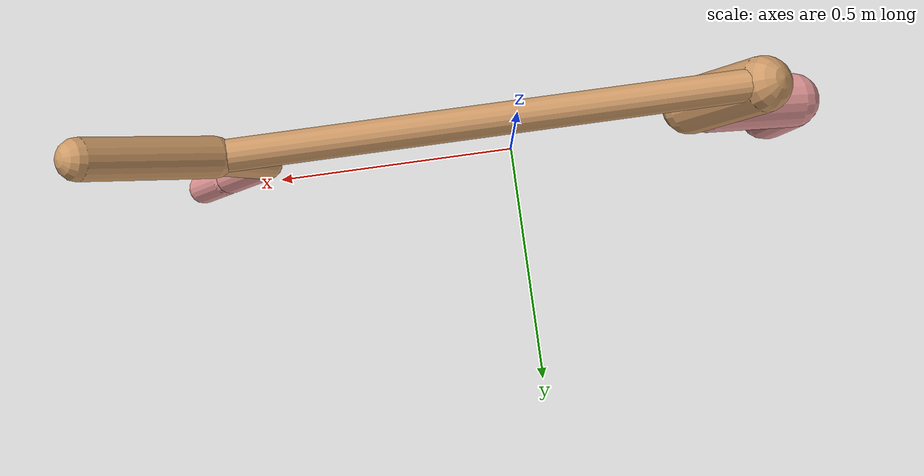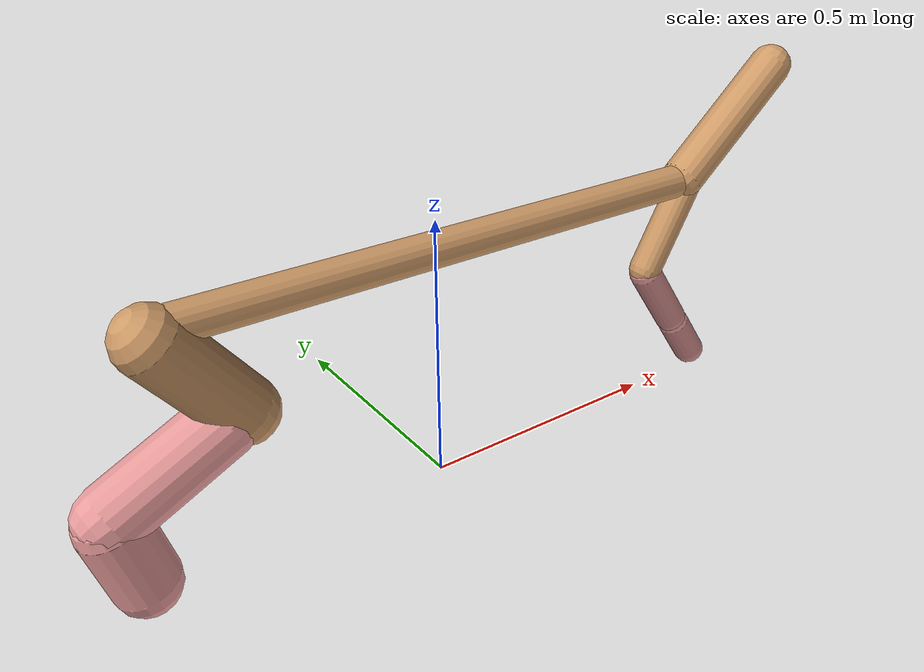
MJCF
<mujoco model="cheetah">
  <compiler angle="radian" coordinate="local" inertiafromgeom="true" settotalmass="14" />
  <default>
    <joint armature=".1" damping=".01" limited="true" solimplimit="0 .8 .03" solreflimit=".02 1" stiffness="8" />
    <geom conaffinity="0" condim="3" contype="1" friction="0.8 .1 .1" rgba="0.8 0.6 .4 1" solimp="0.0 0.8 0.01" solref="0.02 1" />
    <motor ctrllimited="true" ctrlrange="-1 1" />
  </default>
  <size nstack="300000" nuser_geom="1" />
  <option gravity="0 0 -9.81" timestep="0.01" />
  <worldbody>
    <body name="torso" pos="0.0 0.0 0.4487239954271442">
      <joint armature="0" axis="1 0 0" damping="0" limited="false" name="ignorex" pos="0 0 0" stiffness="0" type="slide" />
      <joint armature="0" axis="0 0 1" damping="0" limited="false" name="ignorez" pos="0 0 0" stiffness="0" type="slide" />
      <joint armature="0" axis="0 1 0" damping="0" limited="false" name="ignorey" pos="0 0 0" stiffness="0" type="hinge" />
      <geom fromto="-0.5 0.0 0.0 0.6076930385461113 0.0 0.0" name="torso" size="0.032735232394612325" type="capsule" />
      <geom axisangle="0 1 0 .87" name="head" pos="0.7076930385461114 0.0 0.1" size="0.04191785859804498 0.15" type="capsule" />

      <body name="bthigh" pos="-.5 0 0">
        <joint axis="0 1 0" damping="6" name="bthigh" pos="0 0 0" range="-.52 1.05" stiffness="240" type="hinge" />
        <geom axisangle="0 1 0 -3.8" name="bthigh" pos="0.07514755561632146 0.0 -0.0976918223012179" size="0.05690508578168119 0.10423896053754372" type="capsule" />
        <body name="bshin" pos="0.1102951112326429 0.0 -0.18538364460243578">
          <joint axis="0 1 0" damping="4.5" name="bshin" pos="0 0 0" range="-.785 .785" stiffness="180" type="hinge" />
          <geom axisangle="0 1 0 -2.03" name="bshin" pos="-0.10228505307381917 0.0 -0.05114252653690959" rgba="0.9 0.6 0.6 1" size="0.05690508578168119 0.10783340745263145" type="capsule" />
          <body name="bfoot" pos="-0.20457010614763835 0.0 -0.10228505307381917">
            <joint axis="0 1 0" damping="3" name="bfoot" pos="0 0 0" range="-.4 .785" stiffness="120" type="hinge" />
            <geom axisangle="0 1 0 -.27" name="bfoot" pos="0.022192390445635743 0.0 -0.07175539577422224" rgba="0.9 0.6 0.6 1" size="0.05690508578168119 0.06757560200364904" type="capsule" />
            <inertial mass="10" />
          </body>
        </body>
      </body>
      <body name="fthigh" pos="0.6076930385461115 0.0 0.0">
        <joint axis="0 1 0" damping="4.5" name="fthigh" pos="0 0 0" range="-1.5 0.8" stiffness="180" type="hinge" />
        <geom axisangle="0 1 0 .52" name="fthigh" pos="-0.05238575015781932 0.0 -0.08980414312769025" size="0.0322 0.09804214580733284" type="capsule" />
        <body name="fshin" pos="-0.10477150031563864 0.0 -0.1796082862553805">
          <joint axis="0 1 0" damping="3" name="fshin" pos="0 0 0" range="-1.2 1.1" stiffness="120" type="hinge" />
          <geom axisangle="0 1 0 -.6" name="fshin" pos="0.04868756164118532 0.0 -0.06741354688779505" rgba="0.9 0.6 0.6 1" size="0.0322 0.07813885304945323" type="capsule" />
          <body name="ffoot" pos="0.09737512328237063 0.0 -0.1348270937755901">
            <joint axis="0 1 0" damping="1.5" name="ffoot" pos="0 0 0" range="-3.1 -0.3" stiffness="60" type="hinge" />
            <geom axisangle="0 1 0 -.6" name="ffoot" pos="0.03505067103646568 0.0 -0.05452326605672441" rgba="0.9 0.6 0.6 1" size="0.0322 0.05160112937228044" type="capsule" />
            <inertial mass="10" />
          </body>
        </body>
      </body>
    </body>
  </worldbody>
  <actuator>
    <motor gear="120" joint="bthigh" name="bthigh" />
    <motor gear="90" joint="bshin" name="bshin" />
    <motor gear="60" joint="bfoot" name="bfoot" />
    <motor gear="120" joint="fthigh" name="fthigh" />
    <motor gear="60" joint="fshin" name="fshin" />
    <motor gear="30" joint="ffoot" name="ffoot" />
  </actuator>
</mujoco>
